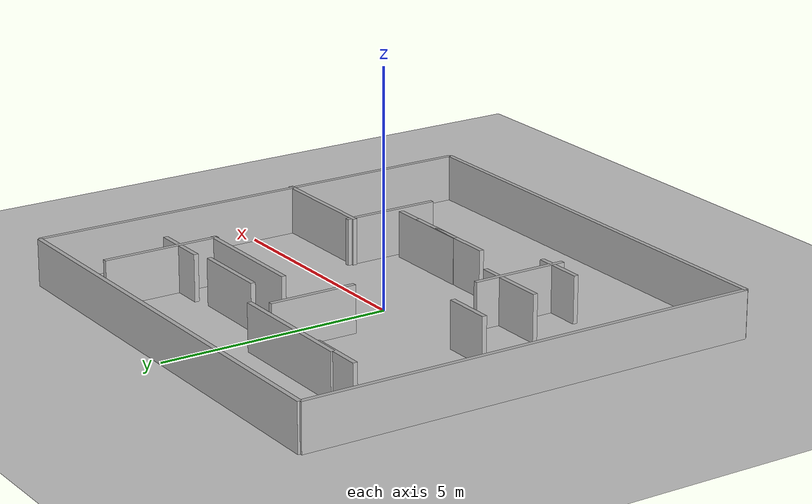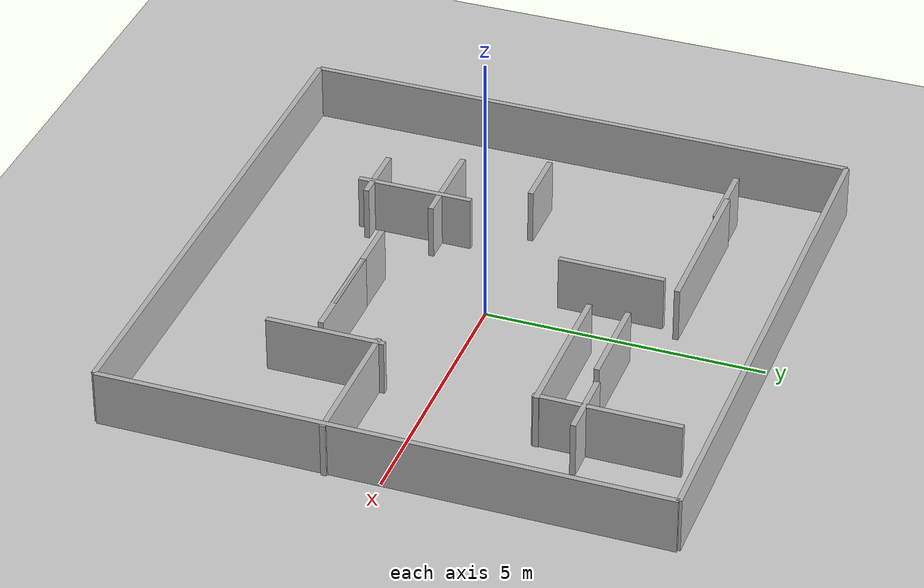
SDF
<?xml version="1.0" ?>
<sdf version="1.8">
<world name="random_room">
    <physics name="1ms" type="ignored">
      <max_step_size>0.001</max_step_size>
      <real_time_factor>1.0</real_time_factor>
    </physics>
    <plugin filename="gz-sim-physics-system" name="gz::sim::systems::Physics" />
    <plugin filename="gz-sim-user-commands-system" name="gz::sim::systems::UserCommands" />
    <plugin filename="gz-sim-scene-broadcaster-system" name="gz::sim::systems::SceneBroadcaster" />
    <plugin filename="gz-sim-sensors-system" name="gz::sim::systems::Sensors">
      <render_engine>ogre2</render_engine>
    </plugin>
    <plugin filename="gz-sim-imu-system" name="gz::sim::systems::Imu" />

    <light name="sun" type="directional">
      <cast_shadows>true</cast_shadows>
      <pose>0 0 10 0 0 0</pose>
      <diffuse>0.8 0.8 0.8 1</diffuse>
      <specular>0.2 0.2 0.2 1</specular>
      <attenuation>
        <range>1000</range>
        <constant>0.9</constant>
        <linear>0.01</linear>
        <quadratic>0.001</quadratic>
      </attenuation>
      <direction>-0.5 0.1 -0.9</direction>
    </light>

    <model name="ground_plane">
      <static>true</static>
      <link name="link">
        <collision name="collision">
          <geometry>
            <plane>
              <normal>0 0 1</normal>
              <size>100 100</size>
            </plane>
          </geometry>
        </collision>
        <visual name="visual">
          <geometry>
            <plane>
              <normal>0 0 1</normal>
              <size>100 100</size>
            </plane>
          </geometry>
          <material>
            <ambient>0.8 0.8 0.8 1</ambient>
            <diffuse>0.8 0.8 0.8 1</diffuse>
            <specular>0.8 0.8 0.8 1</specular>
          </material>
        </visual>
      </link>
    </model>

    <model name="wall_0">
      <static>true</static>
      <pose>0 5.0 0.5 0 0 0</pose>
      <link name="link">
        <collision name="collision">
          <geometry>
            <box><size>10 0.1 1</size></box>
          </geometry>
        </collision>
        <visual name="visual">
          <geometry>
            <box><size>10 0.1 1</size></box>
          </geometry>
        </visual>
      </link>
    </model>

    <model name="wall_1">
      <static>true</static>
      <pose>0 -5.0 0.5 0 0 0</pose>
      <link name="link">
        <collision name="collision">
          <geometry>
            <box><size>10 0.1 1</size></box>
          </geometry>
        </collision>
        <visual name="visual">
          <geometry>
            <box><size>10 0.1 1</size></box>
          </geometry>
        </visual>
      </link>
    </model>

    <model name="wall_2">
      <static>true</static>
      <pose>5.0 0 0.5 0 0 0</pose>
      <link name="link">
        <collision name="collision">
          <geometry>
            <box><size>0.1 10 1</size></box>
          </geometry>
        </collision>
        <visual name="visual">
          <geometry>
            <box><size>0.1 10 1</size></box>
          </geometry>
        </visual>
      </link>
    </model>

    <model name="wall_3">
      <static>true</static>
      <pose>-5.0 0 0.5 0 0 0</pose>
      <link name="link">
        <collision name="collision">
          <geometry>
            <box><size>0.1 10 1</size></box>
          </geometry>
        </collision>
        <visual name="visual">
          <geometry>
            <box><size>0.1 10 1</size></box>
          </geometry>
        </visual>
      </link>
    </model>

    <model name="wall_4">
      <static>true</static>
      <pose>-0.6588496135667041 2.050294358621427 0.5 0 0 0</pose>
      <link name="link">
        <collision name="collision">
          <geometry>
            <box><size>0.1 1.8912287506339904 1</size></box>
          </geometry>
        </collision>
        <visual name="visual">
          <geometry>
            <box><size>0.1 1.8912287506339904 1</size></box>
          </geometry>
        </visual>
      </link>
    </model>

    <model name="wall_5">
      <static>true</static>
      <pose>-2.9015370410875754 -0.0005767082841261484 0.5 0 0 0</pose>
      <link name="link">
        <collision name="collision">
          <geometry>
            <box><size>1.0522035121425233 0.1 1</size></box>
          </geometry>
        </collision>
        <visual name="visual">
          <geometry>
            <box><size>1.0522035121425233 0.1 1</size></box>
          </geometry>
        </visual>
      </link>
    </model>

    <model name="wall_6">
      <static>true</static>
      <pose>3.8249902344713673 -0.9571569252233338 0.5 0 0 0</pose>
      <link name="link">
        <collision name="collision">
          <geometry>
            <box><size>2.5424546685520717 0.1 1</size></box>
          </geometry>
        </collision>
        <visual name="visual">
          <geometry>
            <box><size>2.5424546685520717 0.1 1</size></box>
          </geometry>
        </visual>
      </link>
    </model>

    <model name="wall_7">
      <static>true</static>
      <pose>-2.1726838842211276 -1.4844308145369665 0.5 0 0 0</pose>
      <link name="link">
        <collision name="collision">
          <geometry>
            <box><size>1.6568068818846329 0.1 1</size></box>
          </geometry>
        </collision>
        <visual name="visual">
          <geometry>
            <box><size>1.6568068818846329 0.1 1</size></box>
          </geometry>
        </visual>
      </link>
    </model>

    <model name="wall_8">
      <static>true</static>
      <pose>2.643458785939451 -1.8731456808809357 0.5 0 0 0</pose>
      <link name="link">
        <collision name="collision">
          <geometry>
            <box><size>0.1 2.109687835962082 1</size></box>
          </geometry>
        </collision>
        <visual name="visual">
          <geometry>
            <box><size>0.1 2.109687835962082 1</size></box>
          </geometry>
        </visual>
      </link>
    </model>

    <model name="wall_9">
      <static>true</static>
      <pose>-2.053201827771428 -2.7437554582974446 0.5 0 0 0</pose>
      <link name="link">
        <collision name="collision">
          <geometry>
            <box><size>1.1171969405961768 0.1 1</size></box>
          </geometry>
        </collision>
        <visual name="visual">
          <geometry>
            <box><size>1.1171969405961768 0.1 1</size></box>
          </geometry>
        </visual>
      </link>
    </model>

    <model name="wall_10">
      <static>true</static>
      <pose>0.7125798156972554 -2.0370754564784868 0.5 0 0 0</pose>
      <link name="link">
        <collision name="collision">
          <geometry>
            <box><size>2.2832902131612967 0.1 1</size></box>
          </geometry>
        </collision>
        <visual name="visual">
          <geometry>
            <box><size>2.2832902131612967 0.1 1</size></box>
          </geometry>
        </visual>
      </link>
    </model>

    <model name="wall_11">
      <static>true</static>
      <pose>3.153996005989921 3.2248179364006306 0.5 0 0 0</pose>
      <link name="link">
        <collision name="collision">
          <geometry>
            <box><size>0.1 2.5623388047963918 1</size></box>
          </geometry>
        </collision>
        <visual name="visual">
          <geometry>
            <box><size>0.1 2.5623388047963918 1</size></box>
          </geometry>
        </visual>
      </link>
    </model>

    <model name="wall_12">
      <static>true</static>
      <pose>-1.8315194728978748 -1.955328419665718 0.5 0 0 0</pose>
      <link name="link">
        <collision name="collision">
          <geometry>
            <box><size>0.1 2.0945374314117484 1</size></box>
          </geometry>
        </collision>
        <visual name="visual">
          <geometry>
            <box><size>0.1 2.0945374314117484 1</size></box>
          </geometry>
        </visual>
      </link>
    </model>

    <model name="wall_13">
      <static>true</static>
      <pose>1.3097420481304756 2.7073303580448167 0.5 0 0 0</pose>
      <link name="link">
        <collision name="collision">
          <geometry>
            <box><size>1.7032388224196 0.1 1</size></box>
          </geometry>
        </collision>
        <visual name="visual">
          <geometry>
            <box><size>1.7032388224196 0.1 1</size></box>
          </geometry>
        </visual>
      </link>
    </model>

    <model name="wall_14">
      <static>true</static>
      <pose>-1.8810499619449512 3.2924347667209775 0.5 0 0 0</pose>
      <link name="link">
        <collision name="collision">
          <geometry>
            <box><size>2.971409093622192 0.1 1</size></box>
          </geometry>
        </collision>
        <visual name="visual">
          <geometry>
            <box><size>2.971409093622192 0.1 1</size></box>
          </geometry>
        </visual>
      </link>
    </model>

    <model name="wall_15">
      <static>true</static>
      <pose>1.4669717701740117 -2.0308604145368125 0.5 0 0 0</pose>
      <link name="link">
        <collision name="collision">
          <geometry>
            <box><size>1.9723402391197355 0.1 1</size></box>
          </geometry>
        </collision>
        <visual name="visual">
          <geometry>
            <box><size>1.9723402391197355 0.1 1</size></box>
          </geometry>
        </visual>
      </link>
    </model>

    <model name="wall_16">
      <static>true</static>
      <pose>1.8382245899625476 2.0191906526406918 0.5 0 0 0</pose>
      <link name="link">
        <collision name="collision">
          <geometry>
            <box><size>2.766904883835686 0.1 1</size></box>
          </geometry>
        </collision>
        <visual name="visual">
          <geometry>
            <box><size>2.766904883835686 0.1 1</size></box>
          </geometry>
        </visual>
      </link>
    </model>

    <model name="wall_17">
      <static>true</static>
      <pose>-3.4084053980704594 3.254817408349714 0.5 0 0 0</pose>
      <link name="link">
        <collision name="collision">
          <geometry>
            <box><size>1.278164907017622 0.1 1</size></box>
          </geometry>
        </collision>
        <visual name="visual">
          <geometry>
            <box><size>1.278164907017622 0.1 1</size></box>
          </geometry>
        </visual>
      </link>
    </model>

    <model name="wall_18">
      <static>true</static>
      <pose>3.0974807569754095 2.825313094267184 0.5 0 0 0</pose>
      <link name="link">
        <collision name="collision">
          <geometry>
            <box><size>1.251042712507334 0.1 1</size></box>
          </geometry>
        </collision>
        <visual name="visual">
          <geometry>
            <box><size>1.251042712507334 0.1 1</size></box>
          </geometry>
        </visual>
      </link>
    </model>

</world>
</sdf>
